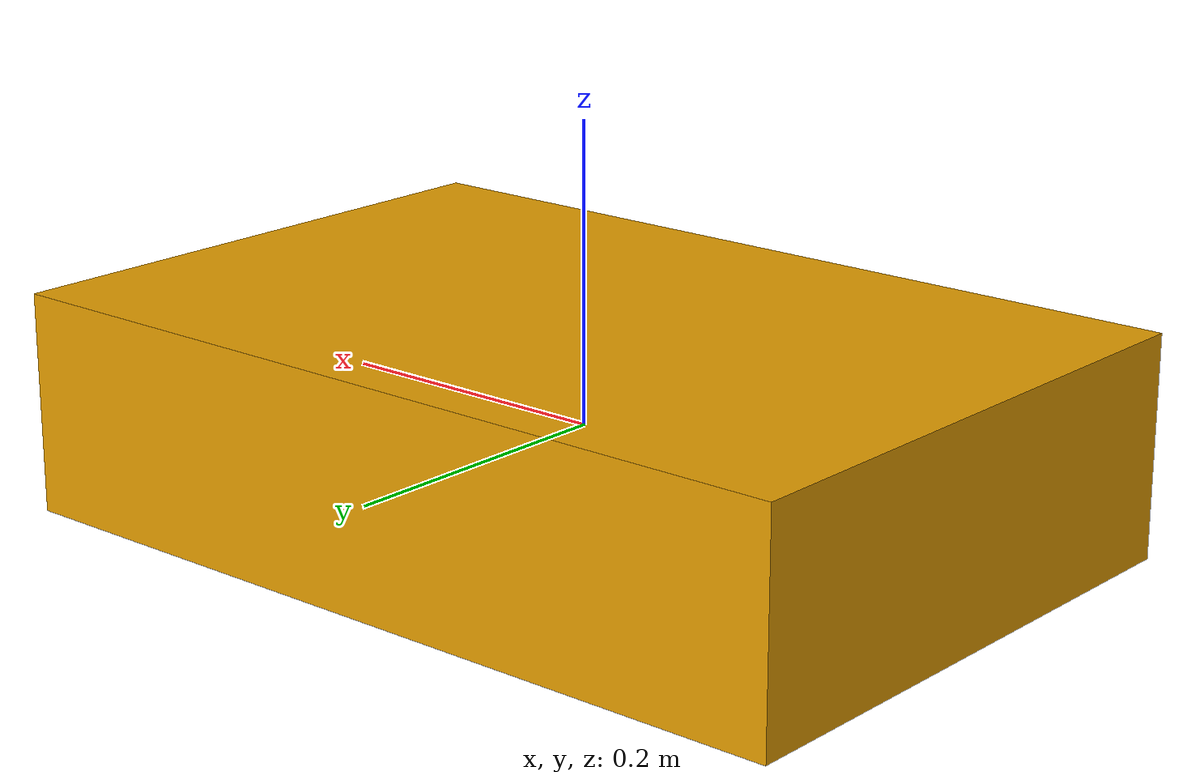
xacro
<?xml version="1.0"?><robot xmlns:xacro="http://www.ros.org/wiki/xacro" name="space_rover"><link name="base_link"><visual><geometry><box size="0.6 0.4 0.15"/></geometry></visual><collision><geometry><box size="0.6 0.4 0.15"/></geometry></collision><inertial><mass value="12"/><origin xyz="0 0 0"/><inertia ixx="0.2" ixy="0" ixz="0" iyy="0.4" iyz="0" izz="0.5"/></inertial></link></robot>
